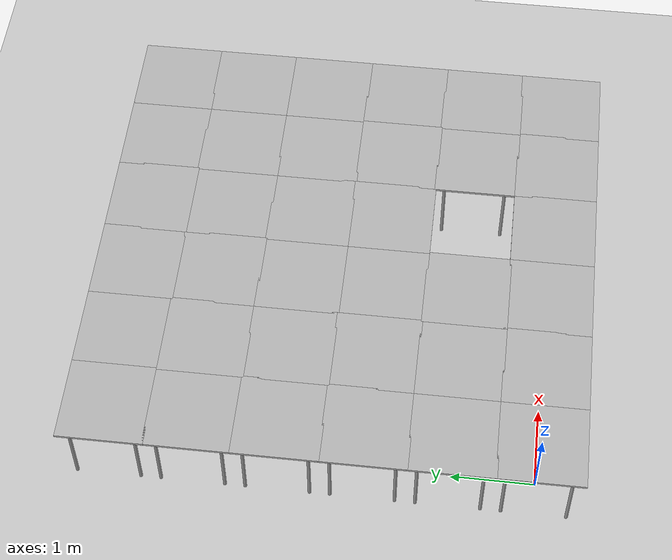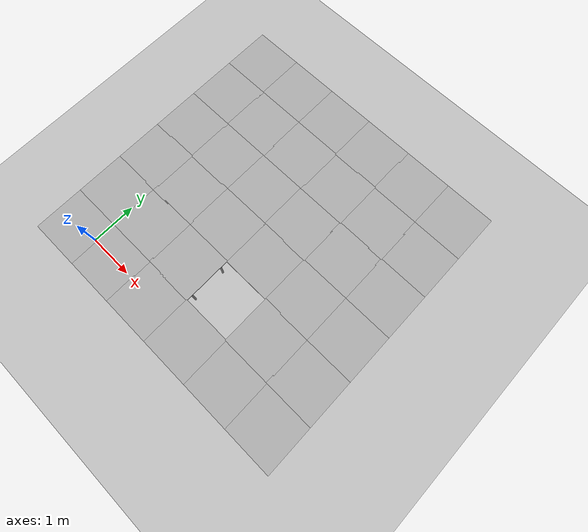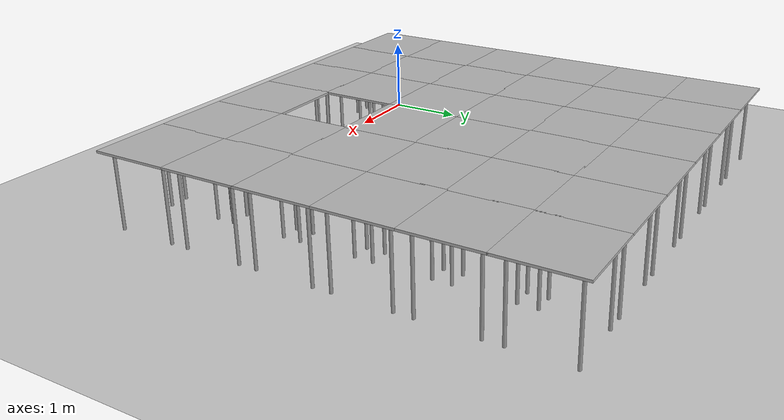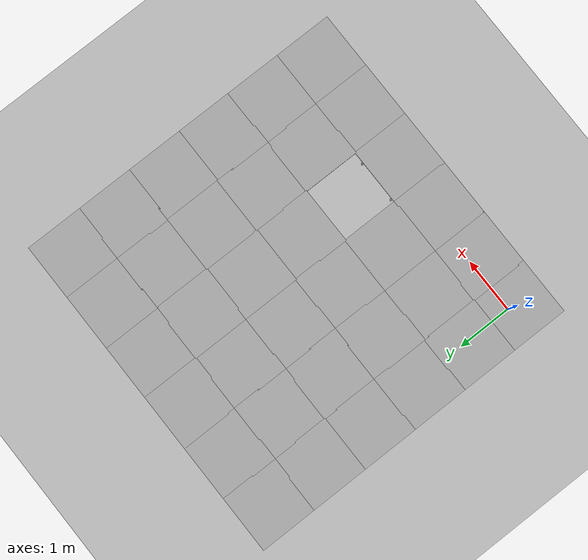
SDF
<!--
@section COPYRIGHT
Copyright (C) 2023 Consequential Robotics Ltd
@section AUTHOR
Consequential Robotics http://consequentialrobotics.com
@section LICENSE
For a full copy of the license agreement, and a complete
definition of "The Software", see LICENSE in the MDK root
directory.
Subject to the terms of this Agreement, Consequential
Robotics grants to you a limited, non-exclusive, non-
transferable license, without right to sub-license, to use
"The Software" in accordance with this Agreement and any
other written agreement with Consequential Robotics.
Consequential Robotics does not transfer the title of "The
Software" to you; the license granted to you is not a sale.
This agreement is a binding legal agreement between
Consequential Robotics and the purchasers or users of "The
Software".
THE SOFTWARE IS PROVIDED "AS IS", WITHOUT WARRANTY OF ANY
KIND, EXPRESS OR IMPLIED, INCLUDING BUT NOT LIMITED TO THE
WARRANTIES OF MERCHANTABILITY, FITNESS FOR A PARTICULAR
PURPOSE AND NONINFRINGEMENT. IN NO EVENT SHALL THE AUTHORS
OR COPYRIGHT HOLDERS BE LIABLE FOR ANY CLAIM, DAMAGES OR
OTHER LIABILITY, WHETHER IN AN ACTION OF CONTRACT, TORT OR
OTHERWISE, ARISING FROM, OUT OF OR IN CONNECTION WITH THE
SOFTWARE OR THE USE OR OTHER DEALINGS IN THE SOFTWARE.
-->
<sdf version="1.5">
 <world name="default">
  <physics name="default_physics" default="0" type="ode">
   <max_step_size>0.001</max_step_size>
   <real_time_factor>1</real_time_factor>
   <real_time_update_rate>1000</real_time_update_rate>
  </physics>
  <scene>
   <ambient>0.2 0.2 0.2 1</ambient>
   <background>0.4 0.4 0.4 1</background>
   <shadows>1</shadows>
   <grid>0</grid>
  </scene>
  <light name="spotlight" type="spot">
   <pose>1 1 2.5 0 0 0</pose>
   <attenuation>
    <range>10</range>
    <constant>0.15</constant>
    <linear>0.1</linear>
    <quadratic>0.05</quadratic>
   </attenuation>
   <direction>0 0 -1</direction>
   <spot><inner_angle>1</inner_angle><outer_angle>2</outer_angle><falloff>1</falloff></spot>
  </light>
  <light name="candle" type="point">
   <pose>0 4 1.25 0 0 0</pose>
   <attenuation>
    <range>10</range>
    <constant>0.1</constant>
    <linear>0.3</linear>
    <quadratic>0.5</quadratic>
   </attenuation>
  </light>
  <light name="ball-lightning" type="point">
   <pose>4 4 1.4 0 0 0</pose>
   <attenuation>
    <range>10</range>
    <constant>0.01</constant>
    <linear>0.05</linear>
    <quadratic>0.05</quadratic>
   </attenuation>
  </light>
  <include><uri>model://ground_plane</uri></include>
  <model name="surface">
   <static>true</static>
   <include><name>tile-1</name><uri>model://platform_tile</uri></include>
   <include><name>tile-2</name><uri>model://platform_tile</uri><pose>1 0 0 0 0 0</pose></include>
   <include><name>tile-3</name><uri>model://platform_tile</uri><pose>2 0 0 0 0 0</pose></include>
   <include><name>tile-4</name><uri>model://platform_tile</uri><pose>3 0 0 0 0 0</pose></include>
   <include><name>tile-5</name><uri>model://platform_tile</uri><pose>4 0 0 0 0 0</pose></include>
   <include><name>tile-6</name><uri>model://platform_tile</uri><pose>5 0 0 0 0 0</pose></include>
   <include><name>tile-7</name><uri>model://platform_tile</uri><pose>0 1 0 0 0 0</pose></include>
   <include><name>tile-8</name><uri>model://platform_tile</uri><pose>1 1 0 0 0 0</pose></include>
   <include><name>tile-9</name><uri>model://platform_tile</uri><pose>2 1 0 0 0 0</pose></include>
   <include><name>tile-11</name><uri>model://platform_tile</uri><pose>4 1 0 0 0 0</pose></include>
   <include><name>tile-12</name><uri>model://platform_tile</uri><pose>5 1 0 0 0 0</pose></include>
   <include><name>tile-13</name><uri>model://platform_tile</uri><pose>0 2 0 0 0 0</pose></include>
   <include><name>tile-14</name><uri>model://platform_tile</uri><pose>1 2 0 0 0 0</pose></include>
   <include><name>tile-15</name><uri>model://platform_tile</uri><pose>2 2 0 0 0 0</pose></include>
   <include><name>tile-16</name><uri>model://platform_tile</uri><pose>3 2 0 0 0 0</pose></include>
   <include><name>tile-17</name><uri>model://platform_tile</uri><pose>4 2 0 0 0 0</pose></include>
   <include><name>tile-18</name><uri>model://platform_tile</uri><pose>5 2 0 0 0 0</pose></include>
   <include><name>tile-19</name><uri>model://platform_tile</uri><pose>0 3 0 0 0 0</pose></include>
   <include><name>tile-20</name><uri>model://platform_tile</uri><pose>1 3 0 0 0 0</pose></include>
   <include><name>tile-21</name><uri>model://platform_tile</uri><pose>2 3 0 0 0 0</pose></include>
   <include><name>tile-22</name><uri>model://platform_tile</uri><pose>3 3 0 0 0 0</pose></include>
   <include><name>tile-23</name><uri>model://platform_tile</uri><pose>4 3 0 0 0 0</pose></include>
   <include><name>tile-24</name><uri>model://platform_tile</uri><pose>5 3 0 0 0 0</pose></include>
   <include><name>tile-25</name><uri>model://platform_tile</uri><pose>0 4 0 0 0 0</pose></include>
   <include><name>tile-26</name><uri>model://platform_tile</uri><pose>1 4 0 0 0 0</pose></include>
   <include><name>tile-27</name><uri>model://platform_tile</uri><pose>2 4 0 0 0 0</pose></include>
   <include><name>tile-28</name><uri>model://platform_tile</uri><pose>3 4 0 0 0 0</pose></include>
   <include><name>tile-29</name><uri>model://platform_tile</uri><pose>4 4 0 0 0 0</pose></include>
   <include><name>tile-30</name><uri>model://platform_tile</uri><pose>5 4 0 0 0 0</pose></include>
   <include><name>tile-31</name><uri>model://platform_tile</uri><pose>0 5 0 0 0 0</pose></include>
   <include><name>tile-32</name><uri>model://platform_tile</uri><pose>1 5 0 0 0 0</pose></include>
   <include><name>tile-33</name><uri>model://platform_tile</uri><pose>2 5 0 0 0 0</pose></include>
   <include><name>tile-34</name><uri>model://platform_tile</uri><pose>3 5 0 0 0 0</pose></include>
   <include><name>tile-35</name><uri>model://platform_tile</uri><pose>4 5 0 0 0 0</pose></include>
   <include><name>tile-36</name><uri>model://platform_tile</uri><pose>5 5 0 0 0 0</pose></include>
  </model>
  <gravity>0 0 -9.8</gravity>
  <magnetic_field>6e-06 2.3e-05 -4.2e-05</magnetic_field>
  <atmosphere type="adiabatic"/>
  <spherical_coordinates>
   <surface_model>EARTH_WGS84</surface_model>
   <latitude_deg>0</latitude_deg>
   <longitude_deg>0</longitude_deg>
   <elevation>0</elevation>
   <heading_deg>0</heading_deg>
  </spherical_coordinates>
 </world>
</sdf>

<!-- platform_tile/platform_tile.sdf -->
<sdf version="1.5">
  <model name="platform_tile">
    <static>true</static>
    <link name="link">
      <collision name="surface">
        <pose>-0.01 -0.01 1.0 0 0 0</pose>
        <geometry>
          <box>
            <size>1.02 1.02 0.03</size>
          </box>
        </geometry>
        <surface>
          <friction>
            <ode>
              <mu>0.6</mu>
              <mu2>0.6</mu2>
            </ode>
          </friction>
        </surface>
      </collision>
      <visual name="surface">
        <pose>-0.01 -0.01 1.0 0 0 0</pose>
        <geometry>
          <box>
            <size>1.02 1.02 0.03</size>
          </box>
        </geometry>
        <material>
          <script>
            <uri>model://platform_tile/materials/scripts</uri>
            <uri>model://platform_tile/materials/textures</uri>
            <name>platform_tile/Diffuse</name>
          </script>
        </material>
      </visual>
      <collision name="front_left_leg">
        <pose>0.38 0.38 0.5 0 0 0</pose>
        <geometry>
          <cylinder>
            <radius>0.02</radius>
            <length>1.0</length>
          </cylinder>
        </geometry>
      </collision>
      <visual name="front_left_leg">
        <pose>0.38 0.38 0.5 0 0 0</pose>
        <geometry>
          <cylinder>
            <radius>0.02</radius>
            <length>1.0</length>
          </cylinder>
        </geometry>
        <material>
          <script>
            <uri>file://media/materials/scripts/gazebo.material</uri>
            <name>Gazebo/Grey</name>
          </script>
        </material>
      </visual>
      <collision name="front_right_leg">
        <pose>0.38 -0.38 0.5 0 0 0</pose>
        <geometry>
          <cylinder>
            <radius>0.02</radius>
            <length>1.0</length>
          </cylinder>
        </geometry>
      </collision>
      <visual name="front_right_leg">
        <pose>0.38 -0.38 0.5 0 0 0</pose>
        <geometry>
          <cylinder>
            <radius>0.02</radius>
            <length>1.0</length>
          </cylinder>
        </geometry>
        <material>
          <script>
            <uri>file://media/materials/scripts/gazebo.material</uri>
            <name>Gazebo/Grey</name>
          </script>
        </material>
      </visual>
      <collision name="back_right_leg">
        <pose>-0.38 -0.38 0.5 0 0 0</pose>
        <geometry>
          <cylinder>
            <radius>0.02</radius>
            <length>1.0</length>
          </cylinder>
        </geometry>
      </collision>
      <visual name="back_right_leg">
        <pose>-0.38 -0.38 0.5 0 0 0</pose>
        <geometry>
          <cylinder>
            <radius>0.02</radius>
            <length>1.0</length>
          </cylinder>
        </geometry>
        <material>
          <script>
            <uri>file://media/materials/scripts/gazebo.material</uri>
            <name>Gazebo/Grey</name>
          </script>
        </material>
      </visual>
      <collision name="back_left_leg">
        <pose>-0.38 0.38 0.5 0 0 0</pose>
        <geometry>
          <cylinder>
            <radius>0.02</radius>
            <length>1.0</length>
          </cylinder>
        </geometry>
      </collision>
      <visual name="back_left_leg">
        <pose>-0.38 0.38 0.5 0 0 0</pose>
        <geometry>
          <cylinder>
            <radius>0.02</radius>
            <length>1.0</length>
          </cylinder>
        </geometry>
        <material>
          <script>
            <uri>file://media/materials/scripts/gazebo.material</uri>
            <name>Gazebo/Grey</name>
          </script>
        </material>
      </visual>
    </link>
  </model>
</sdf>
